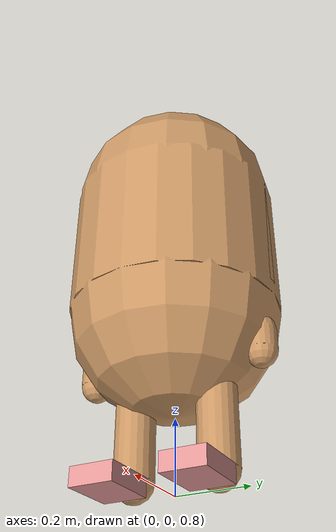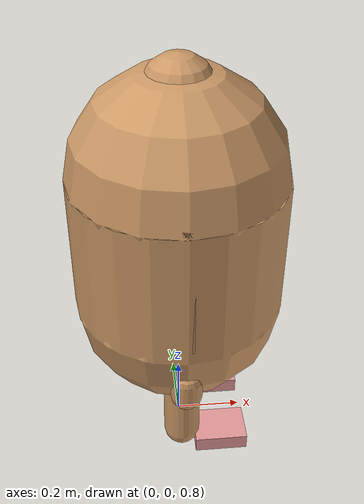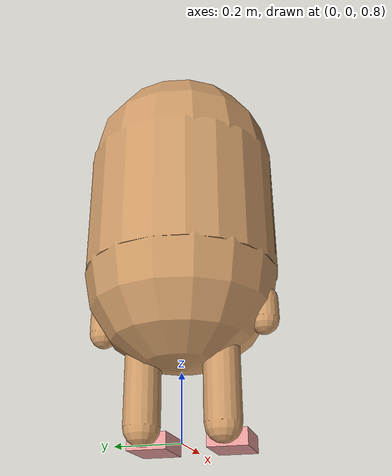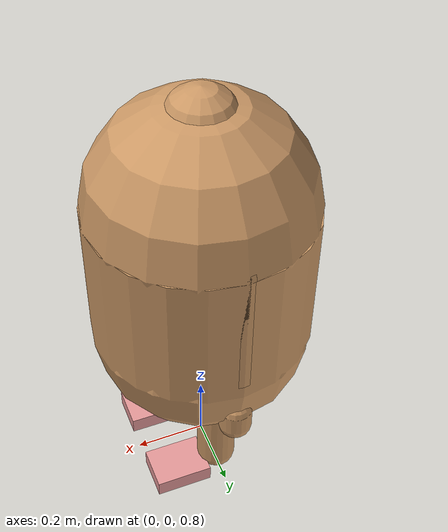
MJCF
<mujoco model="humanoid_robot">
  <compiler angle="radian" coordinate="local" inertiafromgeom="true"/>

  <default>
    <joint armature="1" damping="1" limited="true"/>
    <geom conaffinity="0" condim="3" density="5.0" friction="1 0.5 0.5" margin="0.01" rgba="0.8 0.6 0.4 1"/>
    <motor ctrllimited="true" ctrlrange="-150.0 150.0"/>
  </default>

  <asset>
    <texture builtin="gradient" height="100" rgb1="1 1 1" rgb2="0 0 0" type="skybox" width="100"/>
    <texture builtin="flat" height="1278" mark="cross" markrgb="1 1 1" name="texgeom" random="0.01" rgb1="0.8 0.6 0.4" rgb2="0.8 0.6 0.4" type="cube" width="127"/>
    <texture builtin="checker" height="100" name="texplane" rgb1="0 0 0" rgb2="0.8 0.8 0.8" type="2d" width="100"/>
    <material name="MatPlane" reflectance="0.5" shininess="1" specular="1" texrepeat="60 40" texture="texplane"/>
    <material name="geom" texture="texgeom" texuniform="true"/>
  </asset>

  <worldbody>
    <!-- Humanoid Robot - More realistic proportions -->
    <!-- Root body for world connection -->
    <body name="root" pos="0 0 0">
      <joint name="root_x" type="slide" axis="1 0 0" range="-50 50"/>
      <joint name="root_y" type="slide" axis="0 1 0" range="-50 50"/>
      <joint name="root_z" type="slide" axis="0 0 1" range="-50 50"/>
      <joint name="root_rot" type="hinge" axis="0 0 1" range="-3.14 3.14"/>

      <!-- Invisible geom for root body physics -->
      <geom name="root_geom" pos="0 0 0" size="0.01" type="sphere" rgba="0 0 0 0" contype="0" conaffinity="0"/>

      <!-- Torso body -->
      <body name="torso" pos="0 0 1.5">
        <camera name="track" mode="trackcom" pos="0 -4 0" xyaxes="1 0 0 0 0 1"/>
        <light cutoff="100" diffuse="1 1 1" dir="-0 0 -1.3" directional="true" exponent="1" pos="0 0 1.3" specular=".1 .1 .1"/>

        <!-- Torso - more realistic proportions -->
        <geom name="torso1" pos="0 0 0" size="0.3 0.2 0.25" type="capsule"/>
        <joint armature="0" axis="1 0 0" damping="5" name="abdomen_y" pos="0 0 0" range="-0.5 0.5" stiffness="20" type="hinge"/>
        <joint armature="0" axis="0 1 0" damping="5" name="abdomen_z" pos="0 0 0" range="-0.3 0.3" stiffness="10" type="hinge"/>
        <joint armature="0" axis="0 0 1" damping="5" name="abdomen_x" pos="0 0 0" range="-0.6 0.6" stiffness="10" type="hinge"/>

      <!-- Head - better proportions -->
      <body name="head" pos="0 0 0.25">
        <geom name="head" pos="0 0 0.08" rgba="0.8 0.6 0.4 1" size="0.1 0.1 0.08" type="capsule"/>
        <joint armature="0" axis="0 0 1" damping="5" name="neck_x" pos="0 0 0" range="-0.8 0.8" stiffness="10" type="hinge"/>
        <joint armature="0" axis="0 1 0" damping="5" name="neck_y" pos="0 0 0" range="-0.5 0.5" stiffness="10" type="hinge"/>

        <!-- Vision sensor -->
        <camera name="head_camera" pos="0.05 0 0.05" euler="0 0 0" fovy="60"/>
      </body>

      <!-- Right Arm - improved proportions and joint ranges -->
      <body name="right_upper_arm" pos="0 -0.25 0.1">
        <geom name="right_uarm1" pos="0 0 -0.08" rgba="0.8 0.6 0.4 1" size="0.05 0.18" type="capsule"/>
        <joint armature="0" axis="2 1 1" damping="5" name="right_shoulder1" pos="0 0 0" range="-1.8 1.8" stiffness="10" type="hinge"/>
        <joint armature="0" axis="0 -1 1" damping="5" name="right_shoulder2" pos="0 0 0" range="-1.8 1.8" stiffness="10" type="hinge"/>

        <body name="right_lower_arm" pos="0 0 -0.2">
          <geom name="right_larm" pos="0 0 -0.1" rgba="0.8 0.6 0.4 1" size="0.035 0.1" type="capsule"/>
          <joint armature="0" axis="0 1 1" damping="5" name="right_elbow" pos="0 0 0" range="-2.2 0" stiffness="0" type="hinge"/>

          <body name="right_hand" pos="0 0 -0.2">
            <geom name="right_hand" pos="0 0 -0.03" rgba="0.8 0.6 0.4 1" size="0.045 0.03" type="capsule"/>
            <joint armature="0" axis="1 0 0" damping="5" name="right_wrist_y" pos="0 0 0" range="-0.6 0.6" stiffness="10" type="hinge"/>
            <joint armature="0" axis="0 1 0" damping="5" name="right_wrist_x" pos="0 0 0" range="-0.6 0.6" stiffness="10" type="hinge"/>
            <joint armature="0" axis="0 0 1" damping="5" name="right_wrist_z" pos="0 0 0" range="-1.2 0.4" stiffness="10" type="hinge"/>
          </body>
        </body>
      </body>

      <!-- Left Arm - improved proportions and joint ranges -->
      <body name="left_upper_arm" pos="0 0.25 0.1">
        <geom name="left_uarm1" pos="0 0 -0.08" rgba="0.8 0.6 0.4 1" size="0.05 0.18" type="capsule"/>
        <joint armature="0" axis="2 -1 1" damping="5" name="left_shoulder1" pos="0 0 0" range="-1.8 1.8" stiffness="10" type="hinge"/>
        <joint armature="0" axis="0 1 1" damping="5" name="left_shoulder2" pos="0 0 0" range="-1.8 1.8" stiffness="10" type="hinge"/>

        <body name="left_lower_arm" pos="0 0 -0.2">
          <geom name="left_larm" pos="0 0 -0.1" rgba="0.8 0.6 0.4 1" size="0.035 0.1" type="capsule"/>
          <joint armature="0" axis="0 -1 1" damping="5" name="left_elbow" pos="0 0 0" range="-2.2 0" stiffness="0" type="hinge"/>

          <body name="left_hand" pos="0 0 -0.2">
            <geom name="left_hand" pos="0 0 -0.03" rgba="0.8 0.6 0.4 1" size="0.045 0.03" type="capsule"/>
            <joint armature="0" axis="1 0 0" damping="5" name="left_wrist_y" pos="0 0 0" range="-0.6 0.6" stiffness="10" type="hinge"/>
            <joint armature="0" axis="0 1 0" damping="5" name="left_wrist_x" pos="0 0 0" range="-0.6 0.6" stiffness="10" type="hinge"/>
            <joint armature="0" axis="0 0 1" damping="5" name="left_wrist_z" pos="0 0 0" range="-0.4 1.2" stiffness="10" type="hinge"/>
          </body>
        </body>
      </body>

      <!-- Right Leg - improved proportions and joint ranges -->
      <body name="right_thigh" pos="0 -0.12 -0.05">
        <geom name="right_thigh1" pos="0 0 -0.15" rgba="0.8 0.6 0.4 1" size="0.07 0.15" type="capsule"/>
        <joint armature="0" axis="0 0 1" damping="5" name="right_hip_x" pos="0 0 0" range="-0.3 0.3" stiffness="10" type="hinge"/>
        <joint armature="0" axis="1 1 0" damping="5" name="right_hip_z" pos="0 0 0" range="-1.5 0.6" stiffness="10" type="hinge"/>
        <joint armature="0" axis="0 1 0" damping="5" name="right_hip_y" pos="0 0 0" range="-1.5 0.4" stiffness="10" type="hinge"/>

        <body name="right_shin" pos="0 0 -0.3">
          <geom name="right_shin1" pos="0 0 -0.15" rgba="0.8 0.6 0.4 1" size="0.055 0.15" type="capsule"/>
          <joint armature="0" axis="0 -1 0" damping="6" name="right_knee" pos="0 0 0" range="-2.4 -0.05" stiffness="1" type="hinge"/>

          <body name="right_foot" pos="0.08 0 -0.3">
            <geom name="right_foot" pos="0.04 0 -0.03" rgba="0.9 0.6 0.6 1" size="0.08 0.06 0.025" type="box"/>
            <joint armature="0" axis="0 1 0" damping="3" name="right_ankle_y" pos="0 0 0" range="-0.35 0.35" stiffness="6" type="hinge"/>
            <joint armature="0" axis="1 0 0" damping="3" name="right_ankle_x" pos="0 0 0" range="-0.08 0.04" stiffness="3" type="hinge"/>
            <site name="right_foot" pos="0.04 0 -0.03" size="0.02" rgba="1 0 0 0.3"/>
          </body>
        </body>
      </body>

      <!-- Left Leg - improved proportions and joint ranges -->
      <body name="left_thigh" pos="0 0.12 -0.05">
        <geom name="left_thigh1" pos="0 0 -0.15" rgba="0.8 0.6 0.4 1" size="0.07 0.15" type="capsule"/>
        <joint armature="0" axis="0 0 1" damping="5" name="left_hip_x" pos="0 0 0" range="-0.3 0.3" stiffness="10" type="hinge"/>
        <joint armature="0" axis="1 -1 0" damping="5" name="left_hip_z" pos="0 0 0" range="-0.6 1.5" stiffness="10" type="hinge"/>
        <joint armature="0" axis="0 1 0" damping="5" name="left_hip_y" pos="0 0 0" range="-0.4 1.5" stiffness="10" type="hinge"/>

        <body name="left_shin" pos="0 0 -0.3">
          <geom name="left_shin1" pos="0 0 -0.15" rgba="0.8 0.6 0.4 1" size="0.055 0.15" type="capsule"/>
          <joint armature="0" axis="0 -1 0" damping="6" name="left_knee" pos="0 0 0" range="-2.4 -0.05" stiffness="1" type="hinge"/>

          <body name="left_foot" pos="0.08 0 -0.3">
            <geom name="left_foot" pos="0.04 0 -0.03" rgba="0.9 0.6 0.6 1" size="0.08 0.06 0.025" type="box"/>
            <joint armature="0" axis="0 1 0" damping="3" name="left_ankle_y" pos="0 0 0" range="-0.35 0.35" stiffness="6" type="hinge"/>
            <joint armature="0" axis="1 0 0" damping="3" name="left_ankle_x" pos="0 0 0" range="-0.04 0.08" stiffness="3" type="hinge"/>
            <site name="left_foot" pos="0.04 0 -0.03" size="0.02" rgba="1 0 0 0.3"/>
          </body>
        </body>
      </body>

      <!-- Torso site -->
      <site name="torso" pos="0 0 0" size="0.02" rgba="0 1 0 0.3"/>
        </body>
      </body>
    </worldbody>

  <!-- Actuators -->
  <actuator>
    <!-- Root movement actuators -->
    <motor joint="root_x" name="root_x" ctrlrange="-10 10"/>
    <motor joint="root_y" name="root_y" ctrlrange="-10 10"/>
    <motor joint="root_z" name="root_z" ctrlrange="-10 10"/>
    <motor joint="root_rot" name="root_rot" ctrlrange="-5 5"/>

    <motor joint="abdomen_y" name="abdomen_y"/>
    <motor joint="abdomen_z" name="abdomen_z"/>
    <motor joint="abdomen_x" name="abdomen_x"/>
    <motor joint="neck_x" name="neck_x"/>
    <motor joint="neck_y" name="neck_y"/>
    <motor joint="right_shoulder1" name="right_shoulder1"/>
    <motor joint="right_shoulder2" name="right_shoulder2"/>
    <motor joint="right_elbow" name="right_elbow"/>
    <motor joint="right_wrist_y" name="right_wrist_y"/>
    <motor joint="right_wrist_x" name="right_wrist_x"/>
    <motor joint="right_wrist_z" name="right_wrist_z"/>
    <motor joint="left_shoulder1" name="left_shoulder1"/>
    <motor joint="left_shoulder2" name="left_shoulder2"/>
    <motor joint="left_elbow" name="left_elbow"/>
    <motor joint="left_wrist_y" name="left_wrist_y"/>
    <motor joint="left_wrist_x" name="left_wrist_x"/>
    <motor joint="left_wrist_z" name="left_wrist_z"/>
    <motor joint="right_hip_x" name="right_hip_x"/>
    <motor joint="right_hip_z" name="right_hip_z"/>
    <motor joint="right_hip_y" name="right_hip_y"/>
    <motor joint="right_knee" name="right_knee"/>
    <motor joint="right_ankle_y" name="right_ankle_y"/>
    <motor joint="right_ankle_x" name="right_ankle_x"/>
    <motor joint="left_hip_x" name="left_hip_x"/>
    <motor joint="left_hip_z" name="left_hip_z"/>
    <motor joint="left_hip_y" name="left_hip_y"/>
    <motor joint="left_knee" name="left_knee"/>
    <motor joint="left_ankle_y" name="left_ankle_y"/>
    <motor joint="left_ankle_x" name="left_ankle_x"/>
  </actuator>
</mujoco>
